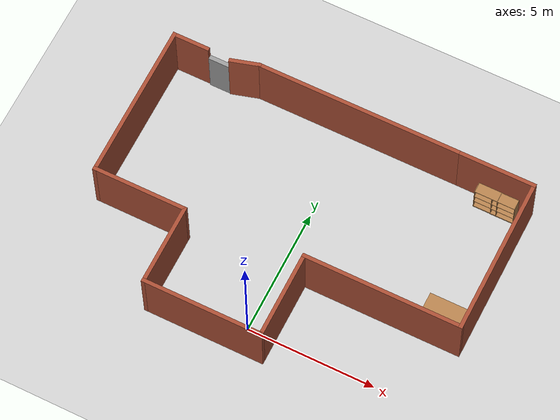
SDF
<sdf version="1.6">
 <world name="default">
  <light name="sun" type="directional">
   <pose>0 0 10 0 -0 0</pose>
   <diffuse>0.8 0.8 0.8 1</diffuse>
   <specular>0.2 0.2 0.2 1</specular>
   <attenuation>
    <range>1000</range>
    <constant>0.9</constant>
    <linear>0.01</linear>
    <quadratic>0.001</quadratic>
   </attenuation>
   <direction>-0.5 0.1 -0.9</direction>
  </light>
  <model name="ground_plane">
   <static>1</static>
   <link name="link">
    <collision name="collision">
     <geometry><plane><normal>0 0 1</normal><size>100 100</size></plane></geometry>
     <surface><friction><ode><mu>100</mu><mu2>50</mu2></ode></friction></surface>
    </collision>
    <visual name="visual">
     <cast_shadows>0</cast_shadows>
     <geometry><plane><normal>0 0 1</normal><size>100 100</size></plane></geometry>
     <material>
      <script><uri>file://media/materials/scripts/gazebo.material</uri><name>Gazebo/Grey</name></script>
     </material>
    </visual>
   </link>
  </model>
  <physics name="default_physics" default="0" type="ode">
   <real_time_update_rate>1000</real_time_update_rate>
   <max_step_size>0.001</max_step_size>
   <real_time_factor>1</real_time_factor>
   <ode>
    <solver>
     <type>quick</type>
     <iters>150</iters>
     <precon_iters>0</precon_iters>
     <sor>1.4</sor>
     <use_dynamic_moi_rescaling>1</use_dynamic_moi_rescaling>
    </solver>
    <constraints>
     <cfm>1e-05</cfm>
     <erp>0.2</erp>
     <contact_max_correcting_vel>2000</contact_max_correcting_vel>
     <contact_surface_layer>0.01</contact_surface_layer>
    </constraints>
   </ode>
  </physics>
  <scene><ambient>0.4 0.4 0.4 1</ambient><background>0.7 0.7 0.7 1</background><shadows>1</shadows></scene>
  <gravity>0 0 -9.8</gravity>
  <magnetic_field>6e-06 2.3e-05 -4.2e-05</magnetic_field>
  <atmosphere type="adiabatic"/>
  <audio><device>default</device></audio>
  <spherical_coordinates>
   <surface_model>EARTH_WGS84</surface_model>
   <latitude_deg>0</latitude_deg>
   <longitude_deg>0</longitude_deg>
   <elevation>0</elevation>
   <heading_deg>0</heading_deg>
  </spherical_coordinates>
  <model name="hospital">
   <pose>-0.027824 3.84879 0 0 -0 0</pose>
   <link name="Door_0">
    <collision name="Door_0_Collision">
     <geometry><box><size>0.9 0.17 2</size></box></geometry>
     <pose>0 0 1 0 -0 0</pose>
    </collision>
    <visual name="Door_0_Visual">
     <pose>0 0 1 0 -0 0</pose>
     <geometry><box><size>0.9 0.17 2</size></box></geometry>
     <material>
      <script><uri>file://media/materials/scripts/gazebo.material</uri><name>Gazebo/Grey</name></script>
     </material>
    </visual>
    <pose>-5.25379 4.43666 0 0 -0 0</pose>
   </link>
   <link name="Wall_1">
    <collision name="Wall_1_Collision">
     <geometry><box><size>8.25 0.15 2.5</size></box></geometry>
     <pose>0 0 1.25 0 -0 0</pose>
    </collision>
    <visual name="Wall_1_Visual">
     <pose>0 0 1.25 0 -0 0</pose>
     <geometry><box><size>8.25 0.15 2.5</size></box></geometry>
     <material>
      <script><uri>file://media/materials/scripts/gazebo.material</uri><name>Gazebo/Bricks</name></script>
      <ambient>1 1 1 1</ambient>
     </material>
     <meta><layer>0</layer></meta>
    </visual>
    <pose>0.25 4.71605 0 0 -0 0</pose>
   </link>
   <link name="Wall_10">
    <collision name="Wall_10_Collision">
     <geometry><box><size>1.5 0.15 2.5</size></box></geometry>
     <pose>0 0 1.25 0 -0 0</pose>
    </collision>
    <visual name="Wall_10_Visual">
     <pose>0 0 1.25 0 -0 0</pose>
     <geometry><box><size>1.5 0.15 2.5</size></box></geometry>
     <material>
      <script><uri>file://media/materials/scripts/gazebo.material</uri><name>Gazebo/Bricks</name></script>
      <ambient>1 1 1 1</ambient>
     </material>
     <meta><layer>0</layer></meta>
    </visual>
    <pose>-6.475 4.46605 0 0 -0 0</pose>
   </link>
   <link name="Wall_14">
    <collision name="Wall_14_Collision">
     <geometry><box><size>1.20925 0.15 2.5</size></box></geometry>
     <pose>0 0 1.25 0 -0 0</pose>
    </collision>
    <visual name="Wall_14_Visual">
     <pose>0 0 1.25 0 -0 0</pose>
     <geometry><box><size>1.20925 0.15 2.5</size></box></geometry>
     <material>
      <script><uri>file://media/materials/scripts/gazebo.material</uri><name>Gazebo/Bricks</name></script>
      <ambient>1 1 1 1</ambient>
     </material>
     <meta><layer>0</layer></meta>
    </visual>
    <pose>-4.30874 4.56881 0 0 -0 0.281735</pose>
   </link>
   <link name="Wall_2">
    <collision name="Wall_2_Collision">
     <geometry><box><size>3 0.15 2.5</size></box></geometry>
     <pose>0 0 1.25 0 -0 0</pose>
    </collision>
    <visual name="Wall_2_Visual">
     <pose>0 0 1.25 0 -0 0</pose>
     <geometry><box><size>3 0.15 2.5</size></box></geometry>
     <material>
      <script><uri>file://media/materials/scripts/gazebo.material</uri><name>Gazebo/Bricks</name></script>
      <ambient>1 1 1 1</ambient>
     </material>
     <meta><layer>0</layer></meta>
    </visual>
    <pose>5.725 4.71605 0 0 -0 0</pose>
   </link>
   <link name="Wall_3">
    <collision name="Wall_3_Collision">
     <geometry><box><size>6.25 0.15 2.5</size></box></geometry>
     <pose>0 0 1.25 0 -0 0</pose>
    </collision>
    <visual name="Wall_3_Visual">
     <pose>0 0 1.25 0 -0 0</pose>
     <geometry><box><size>6.25 0.15 2.5</size></box></geometry>
     <material>
      <script><uri>file://media/materials/scripts/gazebo.material</uri><name>Gazebo/Bricks</name></script>
      <ambient>1 1 1 1</ambient>
     </material>
     <meta><layer>0</layer></meta>
    </visual>
    <pose>7.15 1.66605 0 0 -0 -1.5708</pose>
   </link>
   <link name="Wall_4">
    <collision name="Wall_4_Collision">
     <geometry><box><size>6.25 0.15 2.5</size></box></geometry>
     <pose>0 0 1.25 0 -0 0</pose>
    </collision>
    <visual name="Wall_4_Visual">
     <pose>0 0 1.25 0 -0 0</pose>
     <geometry><box><size>6.25 0.15 2.5</size></box></geometry>
     <material>
      <script><uri>file://media/materials/scripts/gazebo.material</uri><name>Gazebo/Bricks</name></script>
      <ambient>1 1 1 1</ambient>
     </material>
     <meta><layer>0</layer></meta>
    </visual>
    <pose>4.1 -1.38395 0 0 -0 3.14159</pose>
   </link>
   <link name="Wall_5">
    <collision name="Wall_5_Collision">
     <geometry><box><size>3.5 0.15 2.5</size></box></geometry>
     <pose>0 0 1.25 0 -0 0</pose>
    </collision>
    <visual name="Wall_5_Visual">
     <pose>0 0 1.25 0 -0 0</pose>
     <geometry><box><size>3.5 0.15 2.5</size></box></geometry>
     <material>
      <script><uri>file://media/materials/scripts/gazebo.material</uri><name>Gazebo/Bricks</name></script>
      <ambient>1 1 1 1</ambient>
     </material>
     <meta><layer>0</layer></meta>
    </visual>
    <pose>1.05 -3.05895 0 0 -0 -1.5708</pose>
   </link>
   <link name="Wall_6">
    <collision name="Wall_6_Collision">
     <geometry><box><size>4.75 0.15 2.5</size></box></geometry>
     <pose>0 0 1.25 0 -0 0</pose>
    </collision>
    <visual name="Wall_6_Visual">
     <pose>0 0 1.25 0 -0 0</pose>
     <geometry><box><size>4.75 0.15 2.5</size></box></geometry>
     <material>
      <script><uri>file://media/materials/scripts/gazebo.material</uri><name>Gazebo/Bricks</name></script>
      <ambient>1 1 1 1</ambient>
     </material>
     <meta><layer>0</layer></meta>
    </visual>
    <pose>-1.25 -4.73395 0 0 -0 3.14159</pose>
   </link>
   <link name="Wall_7">
    <collision name="Wall_7_Collision">
     <geometry><box><size>3.25 0.15 2.5</size></box></geometry>
     <pose>0 0 1.25 0 -0 0</pose>
    </collision>
    <visual name="Wall_7_Visual">
     <pose>0 0 1.25 0 -0 0</pose>
     <geometry><box><size>3.25 0.15 2.5</size></box></geometry>
     <material>
      <script><uri>file://media/materials/scripts/gazebo.material</uri><name>Gazebo/Bricks</name></script>
      <ambient>1 1 1 1</ambient>
     </material>
     <meta><layer>0</layer></meta>
    </visual>
    <pose>-3.55 -3.18395 0 0 -0 1.5708</pose>
   </link>
   <link name="Wall_8">
    <collision name="Wall_8_Collision">
     <geometry><box><size>3.75 0.15 2.5</size></box></geometry>
     <pose>0 0 1.25 0 -0 0</pose>
    </collision>
    <visual name="Wall_8_Visual">
     <pose>0 0 1.25 0 -0 0</pose>
     <geometry><box><size>3.75 0.15 2.5</size></box></geometry>
     <material>
      <script><uri>file://media/materials/scripts/gazebo.material</uri><name>Gazebo/Bricks</name></script>
      <ambient>1 1 1 1</ambient>
     </material>
     <meta><layer>0</layer></meta>
    </visual>
    <pose>-5.35 -1.63395 0 0 -0 3.14159</pose>
   </link>
   <link name="Wall_9">
    <collision name="Wall_9_Collision">
     <geometry><box><size>6.25 0.15 2.5</size></box></geometry>
     <pose>0 0 1.25 0 -0 0</pose>
    </collision>
    <visual name="Wall_9_Visual">
     <pose>0 0 1.25 0 -0 0</pose>
     <geometry><box><size>6.25 0.15 2.5</size></box></geometry>
     <material>
      <script><uri>file://media/materials/scripts/gazebo.material</uri><name>Gazebo/Bricks</name></script>
      <ambient>1 1 1 1</ambient>
     </material>
     <meta><layer>0</layer></meta>
    </visual>
    <pose>-7.15 1.41605 0 0 -0 1.5708</pose>
   </link>
   <static>1</static>
  </model>
  <model name="bookshelf">
   <static>1</static>
   <link name="link">
    <inertial><mass>1</mass></inertial>
    <collision name="back">
     <pose>0 0.005 0.6 0 -0 0</pose>
     <geometry><box><size>0.9 0.01 1.2</size></box></geometry>
    </collision>
    <visual name="visual1">
     <pose>0 0.005 0.6 0 -0 0</pose>
     <geometry><box><size>0.9 0.01 1.2</size></box></geometry>
     <material>
      <script><uri>file://media/materials/scripts/gazebo.material</uri><name>Gazebo/Wood</name></script>
     </material>
    </visual>
    <collision name="left_side">
     <pose>0.45 -0.195 0.6 0 -0 0</pose>
     <geometry><box><size>0.02 0.4 1.2</size></box></geometry>
    </collision>
    <visual name="visual2">
     <pose>0.45 -0.195 0.6 0 -0 0</pose>
     <geometry><box><size>0.02 0.4 1.2</size></box></geometry>
     <material>
      <script><uri>file://media/materials/scripts/gazebo.material</uri><name>Gazebo/Wood</name></script>
     </material>
    </visual>
    <collision name="right_side">
     <pose>-0.45 -0.195 0.6 0 -0 0</pose>
     <geometry><box><size>0.02 0.4 1.2</size></box></geometry>
    </collision>
    <visual name="visual3">
     <pose>-0.45 -0.195 0.6 0 -0 0</pose>
     <geometry><box><size>0.02 0.4 1.2</size></box></geometry>
     <material>
      <script><uri>file://media/materials/scripts/gazebo.material</uri><name>Gazebo/Wood</name></script>
     </material>
    </visual>
    <collision name="bottom">
     <pose>0 -0.195 0.03 0 -0 0</pose>
     <geometry><box><size>0.88 0.4 0.06</size></box></geometry>
    </collision>
    <visual name="visual4">
     <pose>0 -0.195 0.03 0 -0 0</pose>
     <geometry><box><size>0.88 0.4 0.06</size></box></geometry>
     <material>
      <script><uri>file://media/materials/scripts/gazebo.material</uri><name>Gazebo/Wood</name></script>
     </material>
    </visual>
    <collision name="top">
     <pose>0 -0.195 1.19 0 -0 0</pose>
     <geometry><box><size>0.88 0.4 0.02</size></box></geometry>
    </collision>
    <visual name="visual5">
     <pose>0 -0.195 1.19 0 -0 0</pose>
     <geometry><box><size>0.88 0.4 0.02</size></box></geometry>
     <material>
      <script><uri>file://media/materials/scripts/gazebo.material</uri><name>Gazebo/Wood</name></script>
     </material>
    </visual>
    <collision name="low_shelf">
     <pose>0 -0.195 0.43 0 -0 0</pose>
     <geometry><box><size>0.88 0.4 0.02</size></box></geometry>
    </collision>
    <visual name="visual6">
     <pose>0 -0.195 0.43 0 -0 0</pose>
     <geometry><box><size>0.88 0.4 0.02</size></box></geometry>
     <material>
      <script><uri>file://media/materials/scripts/gazebo.material</uri><name>Gazebo/Wood</name></script>
     </material>
    </visual>
    <collision name="high_shelf">
     <pose>0 -0.195 0.8 0 -0 0</pose>
     <geometry><box><size>0.88 0.4 0.02</size></box></geometry>
    </collision>
    <visual name="visual7">
     <pose>0 -0.195 0.8 0 -0 0</pose>
     <geometry><box><size>0.88 0.4 0.02</size></box></geometry>
     <material>
      <script><uri>file://media/materials/scripts/gazebo.material</uri><name>Gazebo/Wood</name></script>
     </material>
    </visual>
   </link>
   <pose>6.25452 8.38154 0 0 -0 0</pose>
  </model>
  <model name="bookshelf_clone">
   <static>1</static>
   <link name="link">
    <inertial><mass>1</mass></inertial>
    <collision name="back">
     <pose>0 0.005 0.6 0 -0 0</pose>
     <geometry><box><size>0.9 0.01 1.2</size></box></geometry>
    </collision>
    <visual name="visual1">
     <pose>0 0.005 0.6 0 -0 0</pose>
     <geometry><box><size>0.9 0.01 1.2</size></box></geometry>
     <material>
      <script><uri>file://media/materials/scripts/gazebo.material</uri><name>Gazebo/Wood</name></script>
     </material>
    </visual>
    <collision name="left_side">
     <pose>0.45 -0.195 0.6 0 -0 0</pose>
     <geometry><box><size>0.02 0.4 1.2</size></box></geometry>
    </collision>
    <visual name="visual2">
     <pose>0.45 -0.195 0.6 0 -0 0</pose>
     <geometry><box><size>0.02 0.4 1.2</size></box></geometry>
     <material>
      <script><uri>file://media/materials/scripts/gazebo.material</uri><name>Gazebo/Wood</name></script>
     </material>
    </visual>
    <collision name="right_side">
     <pose>-0.45 -0.195 0.6 0 -0 0</pose>
     <geometry><box><size>0.02 0.4 1.2</size></box></geometry>
    </collision>
    <visual name="visual3">
     <pose>-0.45 -0.195 0.6 0 -0 0</pose>
     <geometry><box><size>0.02 0.4 1.2</size></box></geometry>
     <material>
      <script><uri>file://media/materials/scripts/gazebo.material</uri><name>Gazebo/Wood</name></script>
     </material>
    </visual>
    <collision name="bottom">
     <pose>0 -0.195 0.03 0 -0 0</pose>
     <geometry><box><size>0.88 0.4 0.06</size></box></geometry>
    </collision>
    <visual name="visual4">
     <pose>0 -0.195 0.03 0 -0 0</pose>
     <geometry><box><size>0.88 0.4 0.06</size></box></geometry>
     <material>
      <script><uri>file://media/materials/scripts/gazebo.material</uri><name>Gazebo/Wood</name></script>
     </material>
    </visual>
    <collision name="top">
     <pose>0 -0.195 1.19 0 -0 0</pose>
     <geometry><box><size>0.88 0.4 0.02</size></box></geometry>
    </collision>
    <visual name="visual5">
     <pose>0 -0.195 1.19 0 -0 0</pose>
     <geometry><box><size>0.88 0.4 0.02</size></box></geometry>
     <material>
      <script><uri>file://media/materials/scripts/gazebo.material</uri><name>Gazebo/Wood</name></script>
     </material>
    </visual>
    <collision name="low_shelf">
     <pose>0 -0.195 0.43 0 -0 0</pose>
     <geometry><box><size>0.88 0.4 0.02</size></box></geometry>
    </collision>
    <visual name="visual6">
     <pose>0 -0.195 0.43 0 -0 0</pose>
     <geometry><box><size>0.88 0.4 0.02</size></box></geometry>
     <material>
      <script><uri>file://media/materials/scripts/gazebo.material</uri><name>Gazebo/Wood</name></script>
     </material>
    </visual>
    <collision name="high_shelf">
     <pose>0 -0.195 0.8 0 -0 0</pose>
     <geometry><box><size>0.88 0.4 0.02</size></box></geometry>
    </collision>
    <visual name="visual7">
     <pose>0 -0.195 0.8 0 -0 0</pose>
     <geometry><box><size>0.88 0.4 0.02</size></box></geometry>
     <material>
      <script><uri>file://media/materials/scripts/gazebo.material</uri><name>Gazebo/Wood</name></script>
     </material>
    </visual>
   </link>
   <pose>5.56882 8.38957 0 0 -0 0</pose>
  </model>
  <model name="table">
   <static>1</static>
   <link name="link">
    <collision name="surface">
     <pose>0 0 1 0 -0 0</pose>
     <geometry><box><size>1.5 0.8 0.03</size></box></geometry>
     <surface><friction><ode><mu>0.6</mu><mu2>0.6</mu2></ode></friction></surface>
    </collision>
    <visual name="visual1">
     <pose>0 0 1 0 -0 0</pose>
     <geometry><box><size>1.5 0.8 0.03</size></box></geometry>
     <material>
      <script><uri>file://media/materials/scripts/gazebo.material</uri><name>Gazebo/Wood</name></script>
     </material>
    </visual>
    <collision name="front_left_leg">
     <pose>0.68 0.38 0.5 0 -0 0</pose>
     <geometry><cylinder><radius>0.02</radius><length>1</length></cylinder></geometry>
    </collision>
    <visual name="front_left_leg">
     <pose>0.68 0.38 0.5 0 -0 0</pose>
     <geometry><cylinder><radius>0.02</radius><length>1</length></cylinder></geometry>
     <material>
      <script><uri>file://media/materials/scripts/gazebo.material</uri><name>Gazebo/Grey</name></script>
     </material>
    </visual>
    <collision name="front_right_leg">
     <pose>0.68 -0.38 0.5 0 -0 0</pose>
     <geometry><cylinder><radius>0.02</radius><length>1</length></cylinder></geometry>
    </collision>
    <visual name="front_right_leg">
     <pose>0.68 -0.38 0.5 0 -0 0</pose>
     <geometry><cylinder><radius>0.02</radius><length>1</length></cylinder></geometry>
     <material>
      <script><uri>file://media/materials/scripts/gazebo.material</uri><name>Gazebo/Grey</name></script>
     </material>
    </visual>
    <collision name="back_right_leg">
     <pose>-0.68 -0.38 0.5 0 -0 0</pose>
     <geometry><cylinder><radius>0.02</radius><length>1</length></cylinder></geometry>
    </collision>
    <visual name="back_right_leg">
     <pose>-0.68 -0.38 0.5 0 -0 0</pose>
     <geometry><cylinder><radius>0.02</radius><length>1</length></cylinder></geometry>
     <material>
      <script><uri>file://media/materials/scripts/gazebo.material</uri><name>Gazebo/Grey</name></script>
     </material>
    </visual>
    <collision name="back_left_leg">
     <pose>-0.68 0.38 0.5 0 -0 0</pose>
     <geometry><cylinder><radius>0.02</radius><length>1</length></cylinder></geometry>
    </collision>
    <visual name="back_left_leg">
     <pose>-0.68 0.38 0.5 0 -0 0</pose>
     <geometry><cylinder><radius>0.02</radius><length>1</length></cylinder></geometry>
     <material>
      <script><uri>file://media/materials/scripts/gazebo.material</uri><name>Gazebo/Grey</name></script>
     </material>
    </visual>
   </link>
   <pose>6.12798 3.36759 0 0 -0 0</pose>
  </model>
 </world>
</sdf>
